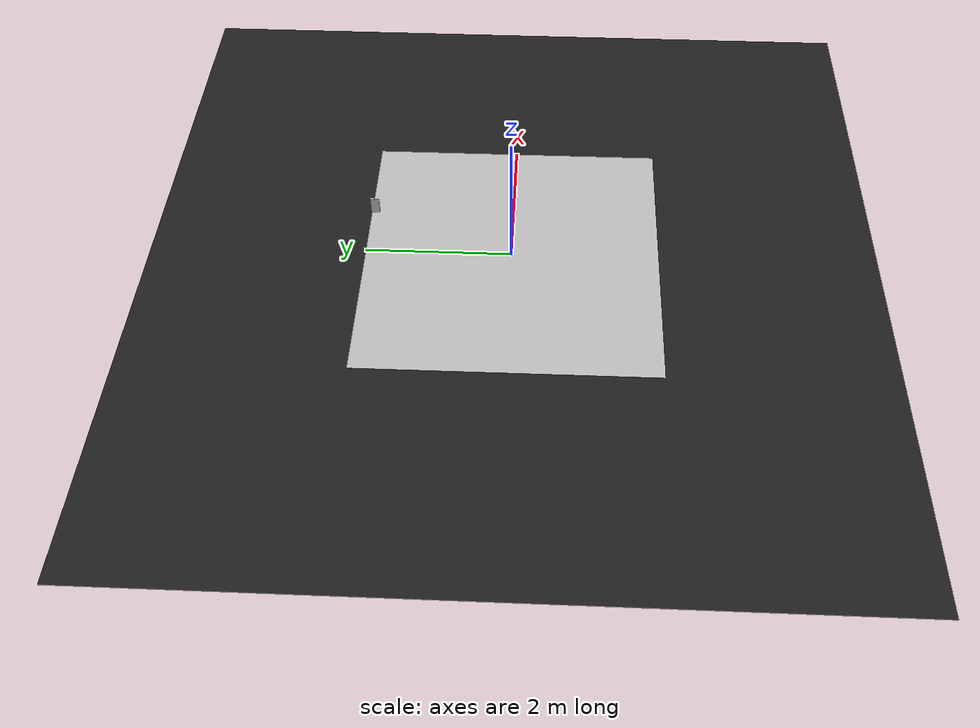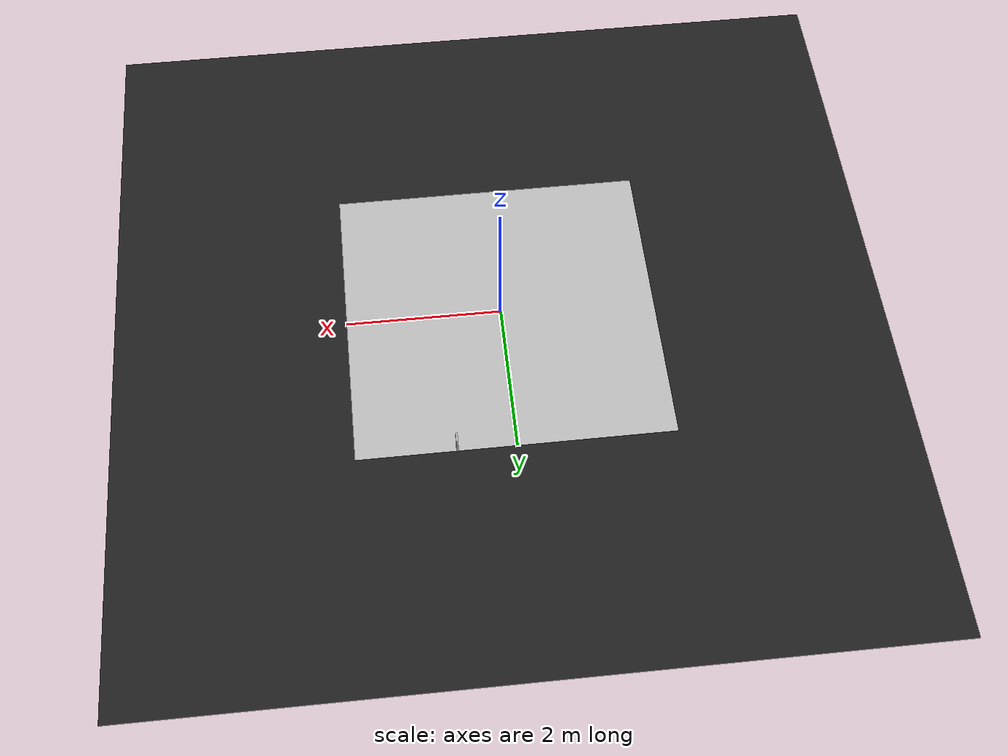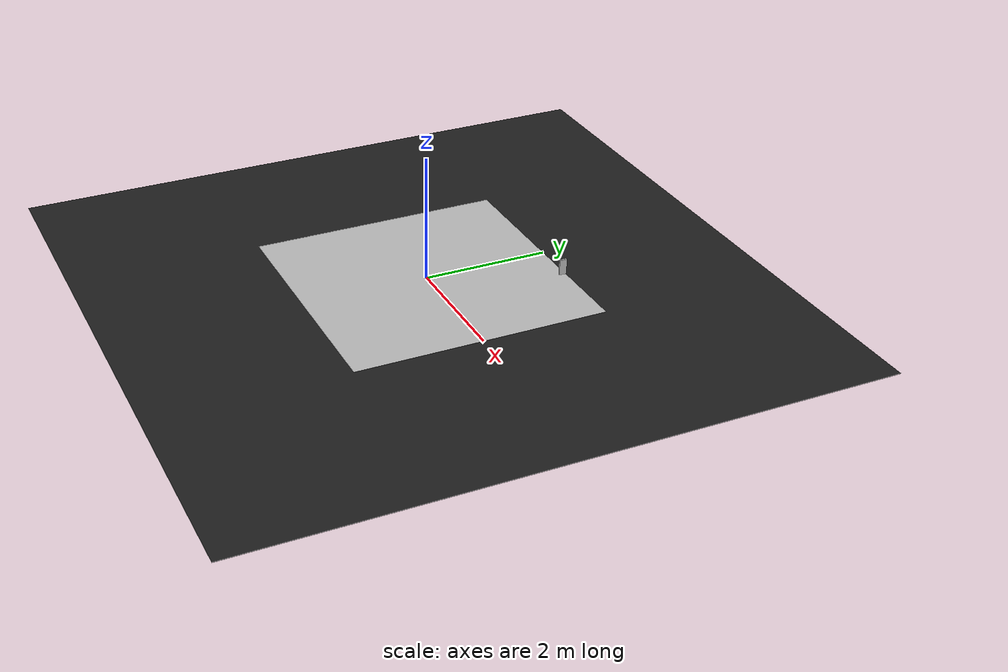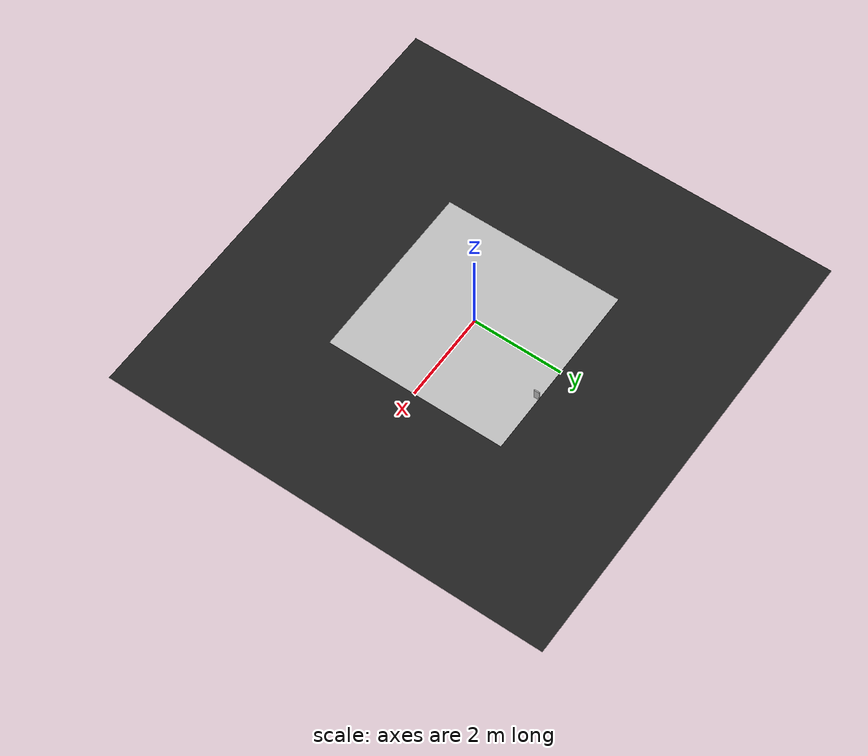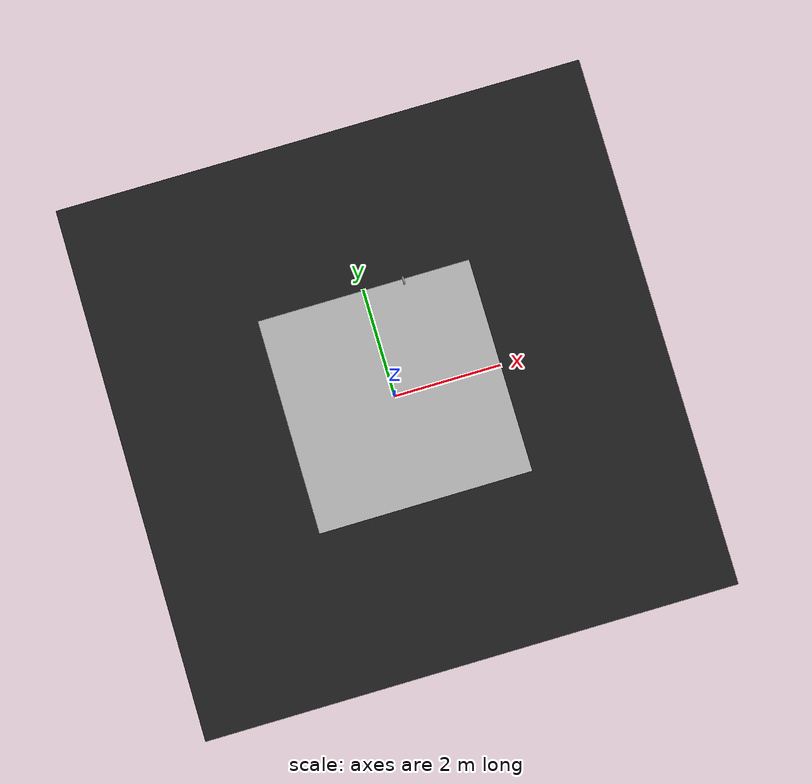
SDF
<sdf version="1.6">
 <world name="default">
  <scene>
   <ambient>0 0 0 1</ambient>
   <shadows>0</shadows>
   <grid>0</grid>
   <background>0.7 0.7 0.7 1</background>
  </scene>
  <include><uri>model://course</uri><pose>0 0 0 0 0 -3.14</pose></include>
  <include>
   <uri>model://turtlebot3_autorace_2020/traffic_parking</uri>
   <pose>0.74 1.95 0.13 0 0 -1.57</pose>
  </include>
  <light name="sun" type="directional">
   <pose>0 0 10 0 -0 0</pose>
   <diffuse>0.8 0.8 0.8 1</diffuse>
   <specular>0.1 0.1 0.1 1</specular>
   <attenuation>
    <range>1000</range>
    <constant>0.9</constant>
    <linear>0.01</linear>
    <quadratic>0.001</quadratic>
   </attenuation>
   <direction>-0.5 0.5 -1</direction>
  </light>
  <model name="ground2">
   <pose>0 0 -0.1 0 -0 0</pose>
   <static>1</static>
   <link name="ground">
    <collision name="ground_coll"><geometry><box><size>8 8 0.01</size></box></geometry></collision>
    <visual name="ground_vis">
     <geometry><box><size>10 10 0.01</size></box></geometry>
     <material>
      <script><uri>file://media/materials/scripts/gazebo.material</uri><name>Gazebo/FlatBlack</name></script>
     </material>
    </visual>
   </link>
  </model>
  <physics type="ode">
   <max_step_size>0.01</max_step_size>
   <real_time_factor>1</real_time_factor>
   <real_time_update_rate>100</real_time_update_rate>
  </physics>
  <spherical_coordinates>
   <surface_model>EARTH_WGS84</surface_model>
   <latitude_deg>0</latitude_deg>
   <longitude_deg>0</longitude_deg>
   <elevation>0</elevation>
   <heading_deg>0</heading_deg>
  </spherical_coordinates>
  <light name="user_point_light_1" type="point">
   <pose>-1.648146 0.604519 1 0 -0 0</pose>
   <diffuse>0.5 0.5 0.5 1</diffuse>
   <specular>0.1 0.1 0.1 1</specular>
   <attenuation>
    <range>20</range>
    <constant>0.5</constant>
    <linear>0.01</linear>
    <quadratic>0.001</quadratic>
   </attenuation>
   <cast_shadows>0</cast_shadows>
   <direction>0 0 -1</direction>
  </light>
  <light name="user_point_light_2" type="point">
   <pose>1.63854 1.69565 1 0 -0 0</pose>
   <diffuse>0.5 0.5 0.5 1</diffuse>
   <specular>0.1 0.1 0.1 1</specular>
   <attenuation>
    <range>20</range>
    <constant>0.5</constant>
    <linear>0.01</linear>
    <quadratic>0.001</quadratic>
   </attenuation>
   <cast_shadows>0</cast_shadows>
   <direction>0 0 -1</direction>
  </light>
  <light name="user_point_light_3" type="point">
   <pose>0.42  -3.31 1 0 -0 0</pose>
   <diffuse>0.5 0.5 0.5 1</diffuse>
   <specular>0.1 0.1 0.1 1</specular>
   <attenuation>
    <range>20</range>
    <constant>0.5</constant>
    <linear>0.01</linear>
    <quadratic>0.001</quadratic>
   </attenuation>
   <cast_shadows>0</cast_shadows>
   <direction>0 0 -1</direction>
  </light>
 </world>
</sdf>

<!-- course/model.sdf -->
<sdf version="1.6">
  <model name="course">
    <static>true</static>
    <link name="course_link">
      <collision name="course_collision">
        <geometry>
          <plane>
            <normal>0 0 1</normal>
            <size>4 4</size>
          </plane>
        </geometry>
        <surface>
          <friction>
            <ode>
              <mu>100</mu>
              <mu2>50</mu2>
            </ode>
          </friction>
        </surface>
      </collision>
      <visual name="course_visual">
        <cast_shadows>false</cast_shadows>
        <geometry>
	        <plane>
            <normal>0 0 1</normal>
            <size>4 4</size>
          </plane>
        </geometry>
	      <material>
          <script>
            <uri>model://turtlebot3_autorace/course/materials/scripts</uri>
            <uri>model://turtlebot3_autorace/course/materials/textures</uri>
            <name>course</name>
          </script>
        </material>
      </visual>
    </link>
  </model>
</sdf>

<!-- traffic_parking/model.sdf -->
<sdf version="1.6">
  <model name="traffic_parking">
    <static>true</static>
    <link name="box">
      <pose>0 0 0 0 0 0</pose>
      <collision name="collision">
        <geometry>
          <box>
            <size>0.12 0.025 0.25</size>
          </box>
        </geometry>
      </collision>
      <visual name="visual">
        <geometry>
          <box>
            <size>0.12 0.025 0.25</size>
          </box>
        </geometry>
        <material>
          <script>
            <uri>model://turtlebot3_autorace_2020/traffic_parking/materials/scripts</uri>
            <uri>model://turtlebot3_autorace_2020/traffic_parking/materials/textures</uri>
            <name>traffic_parking</name>
          </script>
        </material>
      </visual>
    </link>
  </model>
</sdf>
